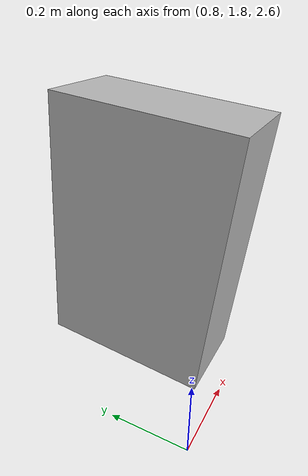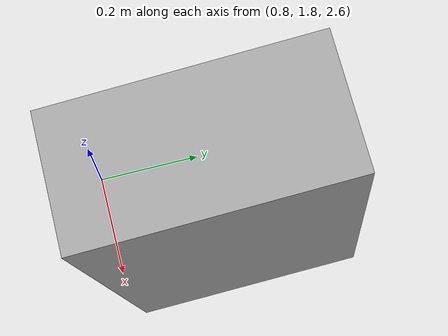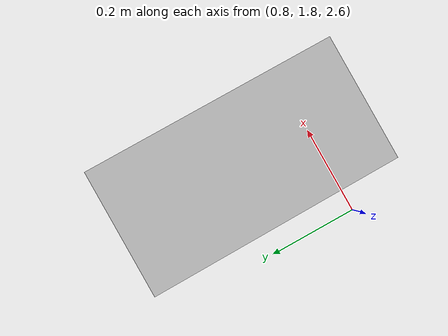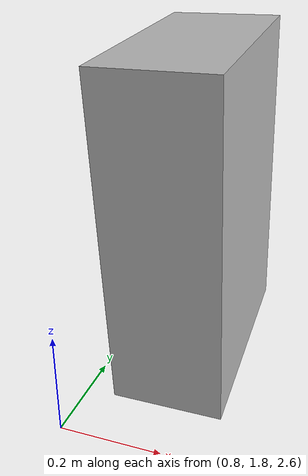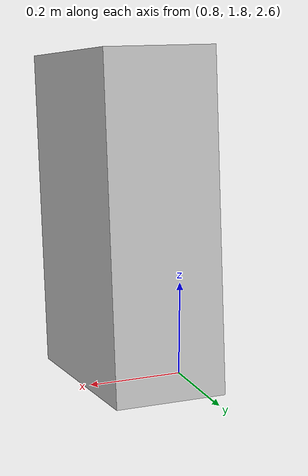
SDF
<?xml version="1.0" ?>
<sdf version="1.4">
    <world name="default">
        <include>
            <uri>model://sun</uri>
        </include>
        <physics type="dart">
            <gravity>0 -9.81 0</gravity>
        </physics>
        <!-- 25.3kg total mass -->
        <model name="test_model">
            <pose>0 0 0 0 0 0</pose>
            <link name="link1">
                <pose>1 2 3 0.1 0 0</pose>
                <inertial>
                    <inertia>
                        <ixx>1</ixx>
                        <ixy>0</ixy>
                        <ixz>0</ixz>
                        <iyy>2</iyy>
                        <iyz>0</iyz>
                        <izz>3</izz>
                    </inertia>
                    <mass>5.0</mass>
                </inertial>
                <visual name="visual">
                    <pose>0 0 0 0 0 0</pose>
                    <geometry>
                        <box>
                            <size>0.2 0.4 0.6</size>
                        </box>
                    </geometry>
                    <material>
                        <script>Gazebo/WoodPallet</script>
                    </material>
                </visual>
            </link>
            <joint name="joint01" type="ball">
                <pose>0 0 0 -0.1 0 0</pose>
                <parent>
                    <link_name>world</link_name>
                </parent>
                <child>
                    <link_name>link1</link_name>
                </child>
            </joint>
        </model>
    </world>
</sdf>
